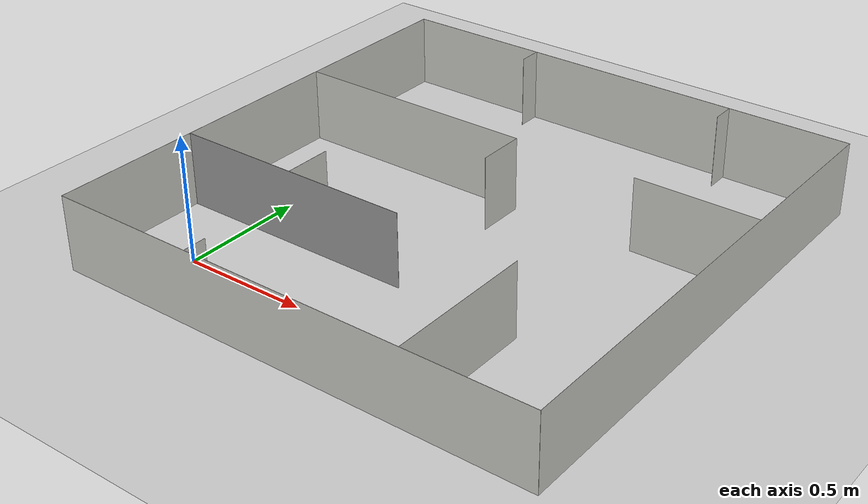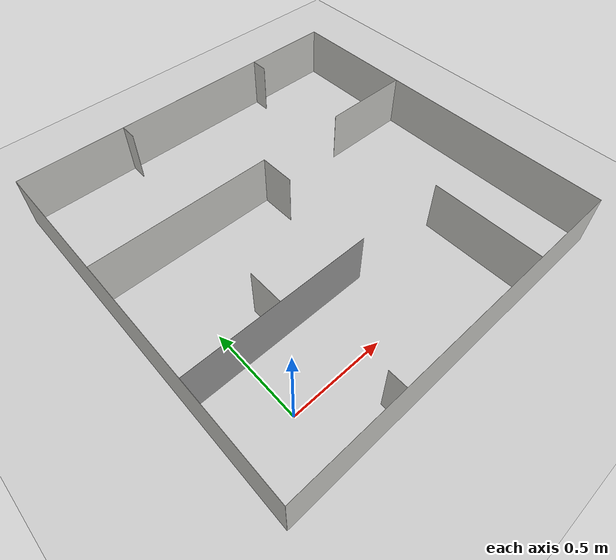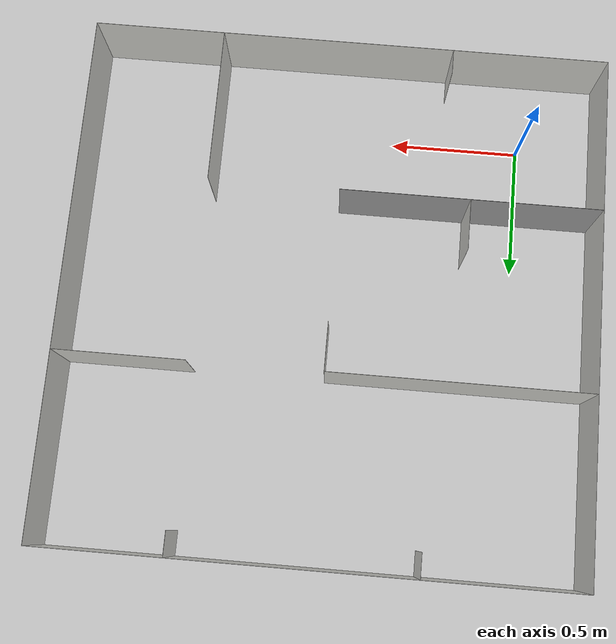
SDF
<sdf version="1.6">
 <world name="default">
  <light name="sun" type="directional">
   <pose>0 0 10 0 -0 0</pose>
   <diffuse>0.8 0.8 0.8 1</diffuse>
   <specular>0.2 0.2 0.2 1</specular>
   <attenuation>
    <range>1000</range>
    <constant>0.9</constant>
    <linear>0.01</linear>
    <quadratic>0.001</quadratic>
   </attenuation>
   <direction>-0.5 0.1 -0.9</direction>
  </light>
  <model name="ground_plane">
   <static>1</static>
   <link name="link">
    <collision name="collision">
     <geometry><plane><normal>0 0 1</normal><size>100 100</size></plane></geometry>
     <surface>
      <contact><collide_bitmask>65535</collide_bitmask></contact>
      <friction><ode><mu>100</mu><mu2>50</mu2></ode></friction>
     </surface>
    </collision>
    <visual name="visual">
     <cast_shadows>0</cast_shadows>
     <geometry><plane><normal>0 0 1</normal><size>100 100</size></plane></geometry>
     <material>
      <script><uri>file://media/materials/scripts/gazebo.material</uri><name>Gazebo/Grey</name></script>
     </material>
    </visual>
   </link>
  </model>
  <gravity>0 0 -9.8</gravity>
  <magnetic_field>6e-06 2.3e-05 -4.2e-05</magnetic_field>
  <atmosphere type="adiabatic"/>
  <physics name="default_physics" default="0" type="ode">
   <max_step_size>0.001</max_step_size>
   <real_time_factor>1</real_time_factor>
   <real_time_update_rate>1000</real_time_update_rate>
  </physics>
  <scene><ambient>0.4 0.4 0.4 1</ambient><background>0.7 0.7 0.7 1</background><shadows>1</shadows></scene>
  <audio><device>default</device></audio>
  <spherical_coordinates>
   <surface_model>EARTH_WGS84</surface_model>
   <latitude_deg>0</latitude_deg>
   <longitude_deg>0</longitude_deg>
   <elevation>0</elevation>
   <heading_deg>0</heading_deg>
  </spherical_coordinates>
  <model name="qmp_maze_map">
   <pose>0.7 0.7 0 0 -0 0</pose>
   <link name="Wall_11">
    <collision name="Wall_11_Collision">
     <geometry><box><size>1.995 0.001 0.3</size></box></geometry>
     <pose>0 0 0.15 0 -0 0</pose>
    </collision>
    <visual name="Wall_11_Visual">
     <pose>0 0 0.15 0 -0 0</pose>
     <geometry><box><size>1.995 0.001 0.3</size></box></geometry>
     <material>
      <script><uri>file://media/materials/scripts/gazebo.material</uri><name>Gazebo/CeilingTiled</name></script>
      <ambient>1 1 1 1</ambient>
     </material>
     <meta><layer>0</layer></meta>
    </visual>
    <pose>-0 0.9975 0 0 -0 3.14159</pose>
   </link>
   <link name="Wall_13">
    <collision name="Wall_13_Collision">
     <geometry><box><size>0.995 0.001 0.3</size></box></geometry>
     <pose>0 0 0.15 0 -0 0</pose>
    </collision>
    <visual name="Wall_13_Visual">
     <pose>0 0 0.15 0 -0 0</pose>
     <geometry><box><size>0.995 0.001 0.3</size></box></geometry>
     <material>
      <script><uri>file://media/materials/scripts/gazebo.material</uri><name>Gazebo/Grey</name></script>
      <ambient>1 1 1 1</ambient>
     </material>
     <meta><layer>0</layer></meta>
    </visual>
    <pose>-0.5 -0.3975 0 0 -0 0</pose>
   </link>
   <link name="Wall_15">
    <collision name="Wall_15_Collision">
     <geometry><box><size>0.595 0.001 0.3</size></box></geometry>
     <pose>0 0 0.15 0 -0 0</pose>
    </collision>
    <visual name="Wall_15_Visual">
     <pose>0 0 0.15 0 -0 0</pose>
     <geometry><box><size>0.595 0.001 0.3</size></box></geometry>
     <material>
      <script><uri>file://media/materials/scripts/gazebo.material</uri><name>Gazebo/CeilingTiled</name></script>
      <ambient>1 1 1 1</ambient>
     </material>
     <meta><layer>0</layer></meta>
    </visual>
    <pose>0.4975 -0.7 0 0 -0 1.5708</pose>
   </link>
   <link name="Wall_17">
    <collision name="Wall_17_Collision">
     <geometry><box><size>0.195 0.001 0.3</size></box></geometry>
     <pose>0 0 0.15 0 -0 0</pose>
    </collision>
    <visual name="Wall_17_Visual">
     <pose>0 0 0.15 0 -0 0</pose>
     <geometry><box><size>0.195 0.001 0.3</size></box></geometry>
     <material>
      <script><uri>file://media/materials/scripts/gazebo.material</uri><name>Gazebo/CeilingTiled</name></script>
      <ambient>1 1 1 1</ambient>
     </material>
     <meta><layer>0</layer></meta>
    </visual>
    <pose>-0.4975 -0.3 0 0 -0 1.5708</pose>
   </link>
   <link name="Wall_19">
    <collision name="Wall_19_Collision">
     <geometry><box><size>0.995 0.001 0.3</size></box></geometry>
     <pose>0 0 0.15 0 -0 0</pose>
    </collision>
    <visual name="Wall_19_Visual">
     <pose>0 0 0.15 0 -0 0</pose>
     <geometry><box><size>0.995 0.001 0.3</size></box></geometry>
     <material>
      <script><uri>file://media/materials/scripts/gazebo.material</uri><name>Gazebo/CeilingTiled</name></script>
      <ambient>1 1 1 1</ambient>
     </material>
     <meta><layer>0</layer></meta>
    </visual>
    <pose>-0.5 0.2975 0 0 -0 0</pose>
   </link>
   <link name="Wall_21">
    <collision name="Wall_21_Collision">
     <geometry><box><size>0.195 0.001 0.3</size></box></geometry>
     <pose>0 0 0.15 0 -0 0</pose>
    </collision>
    <visual name="Wall_21_Visual">
     <pose>0 0 0.15 0 -0 0</pose>
     <geometry><box><size>0.195 0.001 0.3</size></box></geometry>
     <material>
      <script><uri>file://media/materials/scripts/gazebo.material</uri><name>Gazebo/CeilingTiled</name></script>
      <ambient>1 1 1 1</ambient>
     </material>
     <meta><layer>0</layer></meta>
    </visual>
    <pose>-0.0025 0.2 0 0 -0 -1.5708</pose>
   </link>
   <link name="Wall_23">
    <collision name="Wall_23_Collision">
     <geometry><box><size>0.495 0.001 0.3</size></box></geometry>
     <pose>0 0 0.15 0 -0 0</pose>
    </collision>
    <visual name="Wall_23_Visual">
     <pose>0 0 0.15 0 -0 0</pose>
     <geometry><box><size>0.495 0.001 0.3</size></box></geometry>
     <material>
      <script><uri>file://media/materials/scripts/gazebo.material</uri><name>Gazebo/CeilingTiled</name></script>
      <ambient>1 1 1 1</ambient>
     </material>
     <meta><layer>0</layer></meta>
    </visual>
    <pose>0.75 0.2975 0 0 -0 3.14159</pose>
   </link>
   <link name="Wall_25">
    <collision name="Wall_25_Collision">
     <geometry><box><size>0.095 0.001 0.3</size></box></geometry>
     <pose>0 0 0.15 0 -0 0</pose>
    </collision>
    <visual name="Wall_25_Visual">
     <pose>0 0 0.15 0 -0 0</pose>
     <geometry><box><size>0.095 0.001 0.3</size></box></geometry>
     <material>
      <script><uri>file://media/materials/scripts/gazebo.material</uri><name>Gazebo/CeilingTiled</name></script>
      <ambient>1 1 1 1</ambient>
     </material>
     <meta><layer>0</layer></meta>
    </visual>
    <pose>-0.3975 0.95 0 0 -0 -1.5708</pose>
   </link>
   <link name="Wall_27">
    <collision name="Wall_27_Collision">
     <geometry><box><size>0.095 0.001 0.3</size></box></geometry>
     <pose>0 0 0.15 0 -0 0</pose>
    </collision>
    <visual name="Wall_27_Visual">
     <pose>0 0 0.15 0 -0 0</pose>
     <geometry><box><size>0.095 0.001 0.3</size></box></geometry>
     <material>
      <script><uri>file://media/materials/scripts/gazebo.material</uri><name>Gazebo/CeilingTiled</name></script>
      <ambient>1 1 1 1</ambient>
     </material>
     <meta><layer>0</layer></meta>
    </visual>
    <pose>-0.3975 -0.95 0 0 -0 1.5708</pose>
   </link>
   <link name="Wall_29">
    <collision name="Wall_29_Collision">
     <geometry><box><size>0.095 0.001 0.3</size></box></geometry>
     <pose>0 0 0.15 0 -0 0</pose>
    </collision>
    <visual name="Wall_29_Visual">
     <pose>0 0 0.15 0 -0 0</pose>
     <geometry><box><size>0.095 0.001 0.3</size></box></geometry>
     <material>
      <script><uri>file://media/materials/scripts/gazebo.material</uri><name>Gazebo/CeilingTiled</name></script>
      <ambient>1 1 1 1</ambient>
     </material>
     <meta><layer>0</layer></meta>
    </visual>
    <pose>0.5025 0.95 0 0 -0 -1.5708</pose>
   </link>
   <link name="Wall_5">
    <collision name="Wall_5_Collision">
     <geometry><box><size>1.995 0.001 0.3</size></box></geometry>
     <pose>0 0 0.15 0 -0 0</pose>
    </collision>
    <visual name="Wall_5_Visual">
     <pose>0 0 0.15 0 -0 0</pose>
     <geometry><box><size>1.995 0.001 0.3</size></box></geometry>
     <material>
      <script><uri>file://media/materials/scripts/gazebo.material</uri><name>Gazebo/CeilingTiled</name></script>
      <ambient>1 1 1 1</ambient>
     </material>
     <meta><layer>0</layer></meta>
    </visual>
    <pose>-0.9975 -0 0 0 -0 1.5708</pose>
   </link>
   <link name="Wall_7">
    <collision name="Wall_7_Collision">
     <geometry><box><size>1.995 0.001 0.3</size></box></geometry>
     <pose>0 0 0.15 0 -0 0</pose>
    </collision>
    <visual name="Wall_7_Visual">
     <pose>0 0 0.15 0 -0 0</pose>
     <geometry><box><size>1.995 0.001 0.3</size></box></geometry>
     <material>
      <script><uri>file://media/materials/scripts/gazebo.material</uri><name>Gazebo/CeilingTiled</name></script>
      <ambient>1 1 1 1</ambient>
     </material>
     <meta><layer>0</layer></meta>
    </visual>
    <pose>-0 -0.9975 0 0 -0 0</pose>
   </link>
   <link name="Wall_9">
    <collision name="Wall_9_Collision">
     <geometry><box><size>1.995 0.001 0.3</size></box></geometry>
     <pose>0 0 0.15 0 -0 0</pose>
    </collision>
    <visual name="Wall_9_Visual">
     <pose>0 0 0.15 0 -0 0</pose>
     <geometry><box><size>1.995 0.001 0.3</size></box></geometry>
     <material>
      <script><uri>file://media/materials/scripts/gazebo.material</uri><name>Gazebo/CeilingTiled</name></script>
      <ambient>1 1 1 1</ambient>
     </material>
     <meta><layer>0</layer></meta>
    </visual>
    <pose>0.9975 -0 0 0 -0 1.5708</pose>
   </link>
   <static>1</static>
  </model>
 </world>
</sdf>
